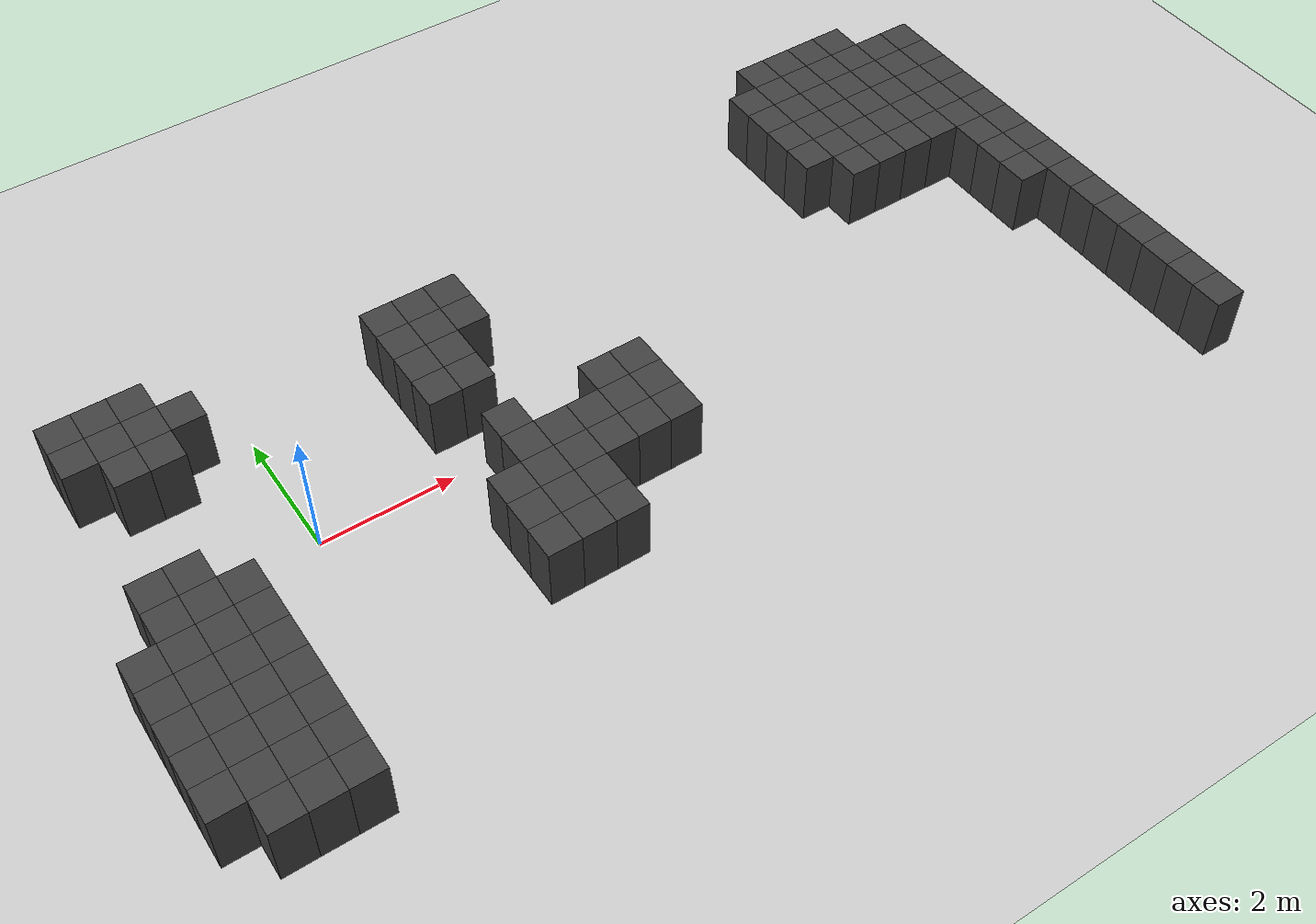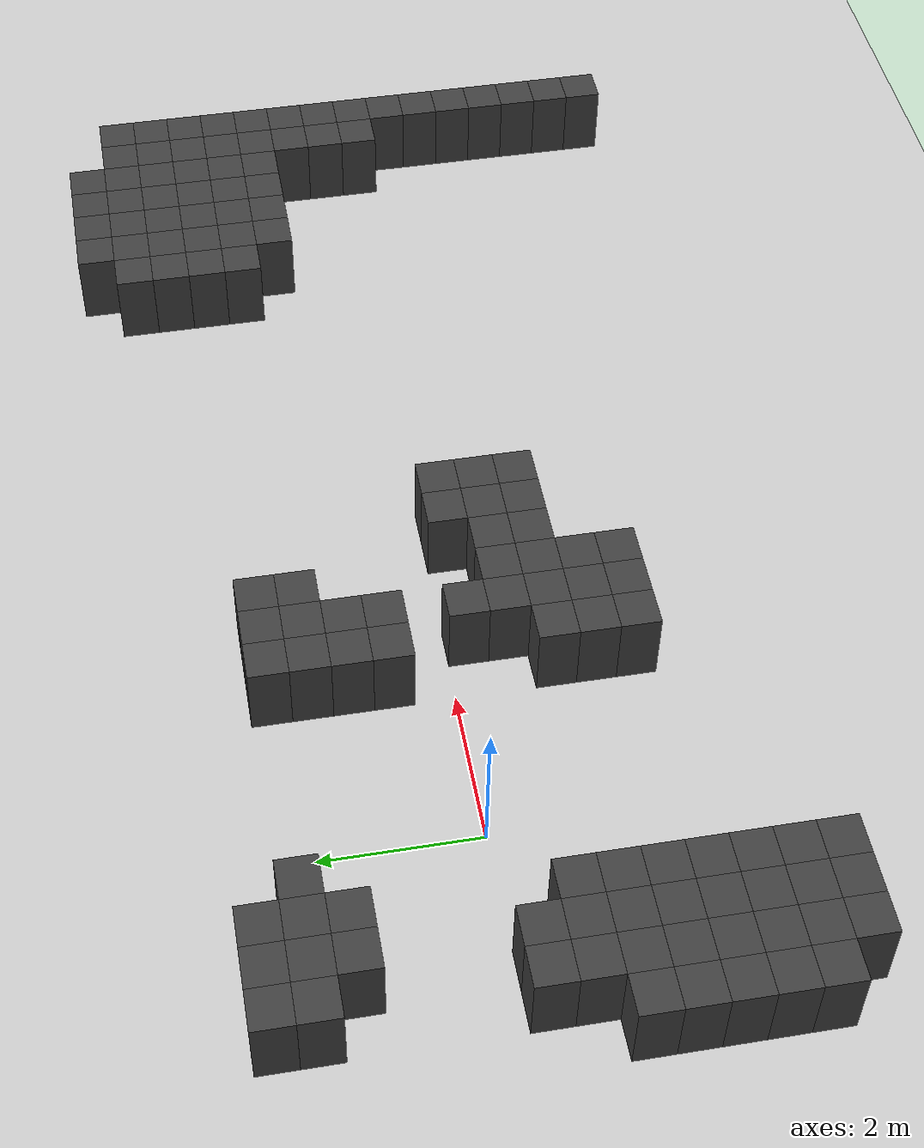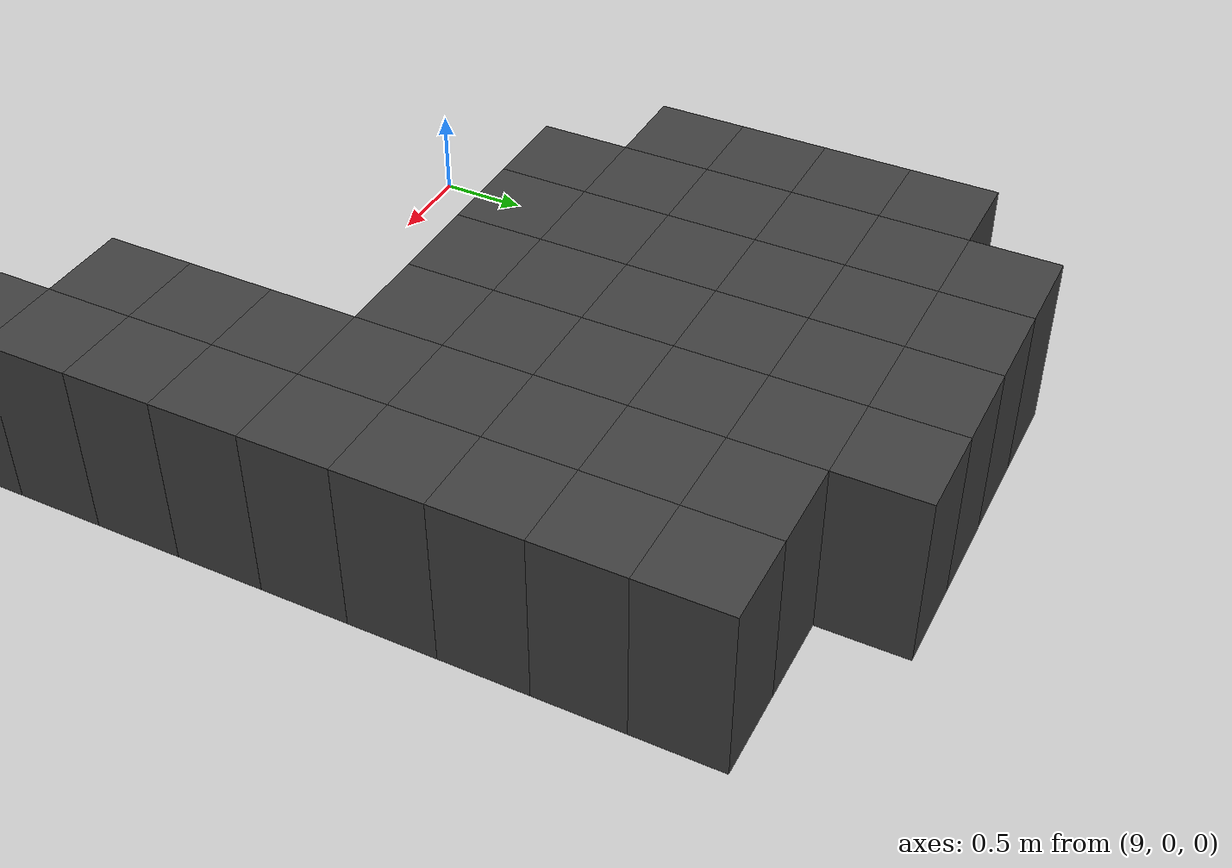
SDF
<sdf version="1.7">
 <world name="map_6610">
  <model name="ground_plane">
   <static>true</static>
   <link name="link">
    <collision name="collision">
     <geometry><plane><normal>0 0 1</normal><size>200 200</size></plane></geometry>
    </collision>
    <visual name="visual">
     <geometry><plane><normal>0 0 1</normal><size>200 200</size></plane></geometry>
     <material><ambient>0.8 0.8 0.8 1</ambient><diffuse>0.8 0.8 0.8 1</diffuse></material>
    </visual>
   </link>
  </model>
  <model name="maze_environment">
   <static>true</static>
   <link name="wall_196">
    <pose>9.750 3.750 0.500 0 0 0</pose>
    <collision name="col"><geometry><box><size>0.5 0.5 1.0</size></box></geometry></collision>
    <visual name="vis">
     <geometry><box><size>0.5 0.5 1.0</size></box></geometry>
     <material><ambient>0.15 0.15 0.15 1</ambient><diffuse>0.25 0.25 0.25 1</diffuse></material>
    </visual>
   </link>
   <link name="wall_197">
    <pose>10.250 3.750 0.500 0 0 0</pose>
    <collision name="col"><geometry><box><size>0.5 0.5 1.0</size></box></geometry></collision>
    <visual name="vis">
     <geometry><box><size>0.5 0.5 1.0</size></box></geometry>
     <material><ambient>0.15 0.15 0.15 1</ambient><diffuse>0.25 0.25 0.25 1</diffuse></material>
    </visual>
   </link>
   <link name="wall_198">
    <pose>10.750 3.750 0.500 0 0 0</pose>
    <collision name="col"><geometry><box><size>0.5 0.5 1.0</size></box></geometry></collision>
    <visual name="vis">
     <geometry><box><size>0.5 0.5 1.0</size></box></geometry>
     <material><ambient>0.15 0.15 0.15 1</ambient><diffuse>0.25 0.25 0.25 1</diffuse></material>
    </visual>
   </link>
   <link name="wall_199">
    <pose>11.250 3.750 0.500 0 0 0</pose>
    <collision name="col"><geometry><box><size>0.5 0.5 1.0</size></box></geometry></collision>
    <visual name="vis">
     <geometry><box><size>0.5 0.5 1.0</size></box></geometry>
     <material><ambient>0.15 0.15 0.15 1</ambient><diffuse>0.25 0.25 0.25 1</diffuse></material>
    </visual>
   </link>
   <link name="wall_209">
    <pose>9.250 3.250 0.500 0 0 0</pose>
    <collision name="col"><geometry><box><size>0.5 0.5 1.0</size></box></geometry></collision>
    <visual name="vis">
     <geometry><box><size>0.5 0.5 1.0</size></box></geometry>
     <material><ambient>0.15 0.15 0.15 1</ambient><diffuse>0.25 0.25 0.25 1</diffuse></material>
    </visual>
   </link>
   <link name="wall_210">
    <pose>9.750 3.250 0.500 0 0 0</pose>
    <collision name="col"><geometry><box><size>0.5 0.5 1.0</size></box></geometry></collision>
    <visual name="vis">
     <geometry><box><size>0.5 0.5 1.0</size></box></geometry>
     <material><ambient>0.15 0.15 0.15 1</ambient><diffuse>0.25 0.25 0.25 1</diffuse></material>
    </visual>
   </link>
   <link name="wall_211">
    <pose>10.250 3.250 0.500 0 0 0</pose>
    <collision name="col"><geometry><box><size>0.5 0.5 1.0</size></box></geometry></collision>
    <visual name="vis">
     <geometry><box><size>0.5 0.5 1.0</size></box></geometry>
     <material><ambient>0.15 0.15 0.15 1</ambient><diffuse>0.25 0.25 0.25 1</diffuse></material>
    </visual>
   </link>
   <link name="wall_212">
    <pose>10.750 3.250 0.500 0 0 0</pose>
    <collision name="col"><geometry><box><size>0.5 0.5 1.0</size></box></geometry></collision>
    <visual name="vis">
     <geometry><box><size>0.5 0.5 1.0</size></box></geometry>
     <material><ambient>0.15 0.15 0.15 1</ambient><diffuse>0.25 0.25 0.25 1</diffuse></material>
    </visual>
   </link>
   <link name="wall_213">
    <pose>11.250 3.250 0.500 0 0 0</pose>
    <collision name="col"><geometry><box><size>0.5 0.5 1.0</size></box></geometry></collision>
    <visual name="vis">
     <geometry><box><size>0.5 0.5 1.0</size></box></geometry>
     <material><ambient>0.15 0.15 0.15 1</ambient><diffuse>0.25 0.25 0.25 1</diffuse></material>
    </visual>
   </link>
   <link name="wall_214">
    <pose>11.750 3.250 0.500 0 0 0</pose>
    <collision name="col"><geometry><box><size>0.5 0.5 1.0</size></box></geometry></collision>
    <visual name="vis">
     <geometry><box><size>0.5 0.5 1.0</size></box></geometry>
     <material><ambient>0.15 0.15 0.15 1</ambient><diffuse>0.25 0.25 0.25 1</diffuse></material>
    </visual>
   </link>
   <link name="wall_215">
    <pose>12.250 3.250 0.500 0 0 0</pose>
    <collision name="col"><geometry><box><size>0.5 0.5 1.0</size></box></geometry></collision>
    <visual name="vis">
     <geometry><box><size>0.5 0.5 1.0</size></box></geometry>
     <material><ambient>0.15 0.15 0.15 1</ambient><diffuse>0.25 0.25 0.25 1</diffuse></material>
    </visual>
   </link>
   <link name="wall_224">
    <pose>-2.250 2.750 0.500 0 0 0</pose>
    <collision name="col"><geometry><box><size>0.5 0.5 1.0</size></box></geometry></collision>
    <visual name="vis">
     <geometry><box><size>0.5 0.5 1.0</size></box></geometry>
     <material><ambient>0.15 0.15 0.15 1</ambient><diffuse>0.25 0.25 0.25 1</diffuse></material>
    </visual>
   </link>
   <link name="wall_225">
    <pose>-1.750 2.750 0.500 0 0 0</pose>
    <collision name="col"><geometry><box><size>0.5 0.5 1.0</size></box></geometry></collision>
    <visual name="vis">
     <geometry><box><size>0.5 0.5 1.0</size></box></geometry>
     <material><ambient>0.15 0.15 0.15 1</ambient><diffuse>0.25 0.25 0.25 1</diffuse></material>
    </visual>
   </link>
   <link name="wall_226">
    <pose>-1.250 2.750 0.500 0 0 0</pose>
    <collision name="col"><geometry><box><size>0.5 0.5 1.0</size></box></geometry></collision>
    <visual name="vis">
     <geometry><box><size>0.5 0.5 1.0</size></box></geometry>
     <material><ambient>0.15 0.15 0.15 1</ambient><diffuse>0.25 0.25 0.25 1</diffuse></material>
    </visual>
   </link>
   <link name="wall_227">
    <pose>9.250 2.750 0.500 0 0 0</pose>
    <collision name="col"><geometry><box><size>0.5 0.5 1.0</size></box></geometry></collision>
    <visual name="vis">
     <geometry><box><size>0.5 0.5 1.0</size></box></geometry>
     <material><ambient>0.15 0.15 0.15 1</ambient><diffuse>0.25 0.25 0.25 1</diffuse></material>
    </visual>
   </link>
   <link name="wall_228">
    <pose>9.750 2.750 0.500 0 0 0</pose>
    <collision name="col"><geometry><box><size>0.5 0.5 1.0</size></box></geometry></collision>
    <visual name="vis">
     <geometry><box><size>0.5 0.5 1.0</size></box></geometry>
     <material><ambient>0.15 0.15 0.15 1</ambient><diffuse>0.25 0.25 0.25 1</diffuse></material>
    </visual>
   </link>
   <link name="wall_229">
    <pose>10.250 2.750 0.500 0 0 0</pose>
    <collision name="col"><geometry><box><size>0.5 0.5 1.0</size></box></geometry></collision>
    <visual name="vis">
     <geometry><box><size>0.5 0.5 1.0</size></box></geometry>
     <material><ambient>0.15 0.15 0.15 1</ambient><diffuse>0.25 0.25 0.25 1</diffuse></material>
    </visual>
   </link>
   <link name="wall_230">
    <pose>10.750 2.750 0.500 0 0 0</pose>
    <collision name="col"><geometry><box><size>0.5 0.5 1.0</size></box></geometry></collision>
    <visual name="vis">
     <geometry><box><size>0.5 0.5 1.0</size></box></geometry>
     <material><ambient>0.15 0.15 0.15 1</ambient><diffuse>0.25 0.25 0.25 1</diffuse></material>
    </visual>
   </link>
   <link name="wall_231">
    <pose>11.250 2.750 0.500 0 0 0</pose>
    <collision name="col"><geometry><box><size>0.5 0.5 1.0</size></box></geometry></collision>
    <visual name="vis">
     <geometry><box><size>0.5 0.5 1.0</size></box></geometry>
     <material><ambient>0.15 0.15 0.15 1</ambient><diffuse>0.25 0.25 0.25 1</diffuse></material>
    </visual>
   </link>
   <link name="wall_232">
    <pose>11.750 2.750 0.500 0 0 0</pose>
    <collision name="col"><geometry><box><size>0.5 0.5 1.0</size></box></geometry></collision>
    <visual name="vis">
     <geometry><box><size>0.5 0.5 1.0</size></box></geometry>
     <material><ambient>0.15 0.15 0.15 1</ambient><diffuse>0.25 0.25 0.25 1</diffuse></material>
    </visual>
   </link>
   <link name="wall_233">
    <pose>12.250 2.750 0.500 0 0 0</pose>
    <collision name="col"><geometry><box><size>0.5 0.5 1.0</size></box></geometry></collision>
    <visual name="vis">
     <geometry><box><size>0.5 0.5 1.0</size></box></geometry>
     <material><ambient>0.15 0.15 0.15 1</ambient><diffuse>0.25 0.25 0.25 1</diffuse></material>
    </visual>
   </link>
   <link name="wall_240">
    <pose>-2.250 2.250 0.500 0 0 0</pose>
    <collision name="col"><geometry><box><size>0.5 0.5 1.0</size></box></geometry></collision>
    <visual name="vis">
     <geometry><box><size>0.5 0.5 1.0</size></box></geometry>
     <material><ambient>0.15 0.15 0.15 1</ambient><diffuse>0.25 0.25 0.25 1</diffuse></material>
    </visual>
   </link>
   <link name="wall_241">
    <pose>-1.750 2.250 0.500 0 0 0</pose>
    <collision name="col"><geometry><box><size>0.5 0.5 1.0</size></box></geometry></collision>
    <visual name="vis">
     <geometry><box><size>0.5 0.5 1.0</size></box></geometry>
     <material><ambient>0.15 0.15 0.15 1</ambient><diffuse>0.25 0.25 0.25 1</diffuse></material>
    </visual>
   </link>
   <link name="wall_242">
    <pose>-1.250 2.250 0.500 0 0 0</pose>
    <collision name="col"><geometry><box><size>0.5 0.5 1.0</size></box></geometry></collision>
    <visual name="vis">
     <geometry><box><size>0.5 0.5 1.0</size></box></geometry>
     <material><ambient>0.15 0.15 0.15 1</ambient><diffuse>0.25 0.25 0.25 1</diffuse></material>
    </visual>
   </link>
   <link name="wall_243">
    <pose>-0.750 2.250 0.500 0 0 0</pose>
    <collision name="col"><geometry><box><size>0.5 0.5 1.0</size></box></geometry></collision>
    <visual name="vis">
     <geometry><box><size>0.5 0.5 1.0</size></box></geometry>
     <material><ambient>0.15 0.15 0.15 1</ambient><diffuse>0.25 0.25 0.25 1</diffuse></material>
    </visual>
   </link>
   <link name="wall_244">
    <pose>2.250 2.250 0.500 0 0 0</pose>
    <collision name="col"><geometry><box><size>0.5 0.5 1.0</size></box></geometry></collision>
    <visual name="vis">
     <geometry><box><size>0.5 0.5 1.0</size></box></geometry>
     <material><ambient>0.15 0.15 0.15 1</ambient><diffuse>0.25 0.25 0.25 1</diffuse></material>
    </visual>
   </link>
   <link name="wall_245">
    <pose>2.750 2.250 0.500 0 0 0</pose>
    <collision name="col"><geometry><box><size>0.5 0.5 1.0</size></box></geometry></collision>
    <visual name="vis">
     <geometry><box><size>0.5 0.5 1.0</size></box></geometry>
     <material><ambient>0.15 0.15 0.15 1</ambient><diffuse>0.25 0.25 0.25 1</diffuse></material>
    </visual>
   </link>
   <link name="wall_246">
    <pose>3.250 2.250 0.500 0 0 0</pose>
    <collision name="col"><geometry><box><size>0.5 0.5 1.0</size></box></geometry></collision>
    <visual name="vis">
     <geometry><box><size>0.5 0.5 1.0</size></box></geometry>
     <material><ambient>0.15 0.15 0.15 1</ambient><diffuse>0.25 0.25 0.25 1</diffuse></material>
    </visual>
   </link>
   <link name="wall_247">
    <pose>9.250 2.250 0.500 0 0 0</pose>
    <collision name="col"><geometry><box><size>0.5 0.5 1.0</size></box></geometry></collision>
    <visual name="vis">
     <geometry><box><size>0.5 0.5 1.0</size></box></geometry>
     <material><ambient>0.15 0.15 0.15 1</ambient><diffuse>0.25 0.25 0.25 1</diffuse></material>
    </visual>
   </link>
   <link name="wall_248">
    <pose>9.750 2.250 0.500 0 0 0</pose>
    <collision name="col"><geometry><box><size>0.5 0.5 1.0</size></box></geometry></collision>
    <visual name="vis">
     <geometry><box><size>0.5 0.5 1.0</size></box></geometry>
     <material><ambient>0.15 0.15 0.15 1</ambient><diffuse>0.25 0.25 0.25 1</diffuse></material>
    </visual>
   </link>
   <link name="wall_249">
    <pose>10.250 2.250 0.500 0 0 0</pose>
    <collision name="col"><geometry><box><size>0.5 0.5 1.0</size></box></geometry></collision>
    <visual name="vis">
     <geometry><box><size>0.5 0.5 1.0</size></box></geometry>
     <material><ambient>0.15 0.15 0.15 1</ambient><diffuse>0.25 0.25 0.25 1</diffuse></material>
    </visual>
   </link>
   <link name="wall_250">
    <pose>10.750 2.250 0.500 0 0 0</pose>
    <collision name="col"><geometry><box><size>0.5 0.5 1.0</size></box></geometry></collision>
    <visual name="vis">
     <geometry><box><size>0.5 0.5 1.0</size></box></geometry>
     <material><ambient>0.15 0.15 0.15 1</ambient><diffuse>0.25 0.25 0.25 1</diffuse></material>
    </visual>
   </link>
   <link name="wall_251">
    <pose>11.250 2.250 0.500 0 0 0</pose>
    <collision name="col"><geometry><box><size>0.5 0.5 1.0</size></box></geometry></collision>
    <visual name="vis">
     <geometry><box><size>0.5 0.5 1.0</size></box></geometry>
     <material><ambient>0.15 0.15 0.15 1</ambient><diffuse>0.25 0.25 0.25 1</diffuse></material>
    </visual>
   </link>
   <link name="wall_252">
    <pose>11.750 2.250 0.500 0 0 0</pose>
    <collision name="col"><geometry><box><size>0.5 0.5 1.0</size></box></geometry></collision>
    <visual name="vis">
     <geometry><box><size>0.5 0.5 1.0</size></box></geometry>
     <material><ambient>0.15 0.15 0.15 1</ambient><diffuse>0.25 0.25 0.25 1</diffuse></material>
    </visual>
   </link>
   <link name="wall_253">
    <pose>12.250 2.250 0.500 0 0 0</pose>
    <collision name="col"><geometry><box><size>0.5 0.5 1.0</size></box></geometry></collision>
    <visual name="vis">
     <geometry><box><size>0.5 0.5 1.0</size></box></geometry>
     <material><ambient>0.15 0.15 0.15 1</ambient><diffuse>0.25 0.25 0.25 1</diffuse></material>
    </visual>
   </link>
   <link name="wall_259">
    <pose>-1.750 1.750 0.500 0 0 0</pose>
    <collision name="col"><geometry><box><size>0.5 0.5 1.0</size></box></geometry></collision>
    <visual name="vis">
     <geometry><box><size>0.5 0.5 1.0</size></box></geometry>
     <material><ambient>0.15 0.15 0.15 1</ambient><diffuse>0.25 0.25 0.25 1</diffuse></material>
    </visual>
   </link>
   <link name="wall_260">
    <pose>-1.250 1.750 0.500 0 0 0</pose>
    <collision name="col"><geometry><box><size>0.5 0.5 1.0</size></box></geometry></collision>
    <visual name="vis">
     <geometry><box><size>0.5 0.5 1.0</size></box></geometry>
     <material><ambient>0.15 0.15 0.15 1</ambient><diffuse>0.25 0.25 0.25 1</diffuse></material>
    </visual>
   </link>
   <link name="wall_261">
    <pose>2.250 1.750 0.500 0 0 0</pose>
    <collision name="col"><geometry><box><size>0.5 0.5 1.0</size></box></geometry></collision>
    <visual name="vis">
     <geometry><box><size>0.5 0.5 1.0</size></box></geometry>
     <material><ambient>0.15 0.15 0.15 1</ambient><diffuse>0.25 0.25 0.25 1</diffuse></material>
    </visual>
   </link>
   <link name="wall_262">
    <pose>2.750 1.750 0.500 0 0 0</pose>
    <collision name="col"><geometry><box><size>0.5 0.5 1.0</size></box></geometry></collision>
    <visual name="vis">
     <geometry><box><size>0.5 0.5 1.0</size></box></geometry>
     <material><ambient>0.15 0.15 0.15 1</ambient><diffuse>0.25 0.25 0.25 1</diffuse></material>
    </visual>
   </link>
   <link name="wall_263">
    <pose>3.250 1.750 0.500 0 0 0</pose>
    <collision name="col"><geometry><box><size>0.5 0.5 1.0</size></box></geometry></collision>
    <visual name="vis">
     <geometry><box><size>0.5 0.5 1.0</size></box></geometry>
     <material><ambient>0.15 0.15 0.15 1</ambient><diffuse>0.25 0.25 0.25 1</diffuse></material>
    </visual>
   </link>
   <link name="wall_264">
    <pose>9.250 1.750 0.500 0 0 0</pose>
    <collision name="col"><geometry><box><size>0.5 0.5 1.0</size></box></geometry></collision>
    <visual name="vis">
     <geometry><box><size>0.5 0.5 1.0</size></box></geometry>
     <material><ambient>0.15 0.15 0.15 1</ambient><diffuse>0.25 0.25 0.25 1</diffuse></material>
    </visual>
   </link>
   <link name="wall_265">
    <pose>9.750 1.750 0.500 0 0 0</pose>
    <collision name="col"><geometry><box><size>0.5 0.5 1.0</size></box></geometry></collision>
    <visual name="vis">
     <geometry><box><size>0.5 0.5 1.0</size></box></geometry>
     <material><ambient>0.15 0.15 0.15 1</ambient><diffuse>0.25 0.25 0.25 1</diffuse></material>
    </visual>
   </link>
   <link name="wall_266">
    <pose>10.250 1.750 0.500 0 0 0</pose>
    <collision name="col"><geometry><box><size>0.5 0.5 1.0</size></box></geometry></collision>
    <visual name="vis">
     <geometry><box><size>0.5 0.5 1.0</size></box></geometry>
     <material><ambient>0.15 0.15 0.15 1</ambient><diffuse>0.25 0.25 0.25 1</diffuse></material>
    </visual>
   </link>
   <link name="wall_267">
    <pose>10.750 1.750 0.500 0 0 0</pose>
    <collision name="col"><geometry><box><size>0.5 0.5 1.0</size></box></geometry></collision>
    <visual name="vis">
     <geometry><box><size>0.5 0.5 1.0</size></box></geometry>
     <material><ambient>0.15 0.15 0.15 1</ambient><diffuse>0.25 0.25 0.25 1</diffuse></material>
    </visual>
   </link>
   <link name="wall_268">
    <pose>11.250 1.750 0.500 0 0 0</pose>
    <collision name="col"><geometry><box><size>0.5 0.5 1.0</size></box></geometry></collision>
    <visual name="vis">
     <geometry><box><size>0.5 0.5 1.0</size></box></geometry>
     <material><ambient>0.15 0.15 0.15 1</ambient><diffuse>0.25 0.25 0.25 1</diffuse></material>
    </visual>
   </link>
   <link name="wall_269">
    <pose>11.750 1.750 0.500 0 0 0</pose>
    <collision name="col"><geometry><box><size>0.5 0.5 1.0</size></box></geometry></collision>
    <visual name="vis">
     <geometry><box><size>0.5 0.5 1.0</size></box></geometry>
     <material><ambient>0.15 0.15 0.15 1</ambient><diffuse>0.25 0.25 0.25 1</diffuse></material>
    </visual>
   </link>
   <link name="wall_270">
    <pose>12.250 1.750 0.500 0 0 0</pose>
    <collision name="col"><geometry><box><size>0.5 0.5 1.0</size></box></geometry></collision>
    <visual name="vis">
     <geometry><box><size>0.5 0.5 1.0</size></box></geometry>
     <material><ambient>0.15 0.15 0.15 1</ambient><diffuse>0.25 0.25 0.25 1</diffuse></material>
    </visual>
   </link>
   <link name="wall_272">
    <pose>2.250 1.250 0.500 0 0 0</pose>
    <collision name="col"><geometry><box><size>0.5 0.5 1.0</size></box></geometry></collision>
    <visual name="vis">
     <geometry><box><size>0.5 0.5 1.0</size></box></geometry>
     <material><ambient>0.15 0.15 0.15 1</ambient><diffuse>0.25 0.25 0.25 1</diffuse></material>
    </visual>
   </link>
   <link name="wall_273">
    <pose>2.750 1.250 0.500 0 0 0</pose>
    <collision name="col"><geometry><box><size>0.5 0.5 1.0</size></box></geometry></collision>
    <visual name="vis">
     <geometry><box><size>0.5 0.5 1.0</size></box></geometry>
     <material><ambient>0.15 0.15 0.15 1</ambient><diffuse>0.25 0.25 0.25 1</diffuse></material>
    </visual>
   </link>
   <link name="wall_274">
    <pose>9.750 1.250 0.500 0 0 0</pose>
    <collision name="col"><geometry><box><size>0.5 0.5 1.0</size></box></geometry></collision>
    <visual name="vis">
     <geometry><box><size>0.5 0.5 1.0</size></box></geometry>
     <material><ambient>0.15 0.15 0.15 1</ambient><diffuse>0.25 0.25 0.25 1</diffuse></material>
    </visual>
   </link>
   <link name="wall_275">
    <pose>10.250 1.250 0.500 0 0 0</pose>
    <collision name="col"><geometry><box><size>0.5 0.5 1.0</size></box></geometry></collision>
    <visual name="vis">
     <geometry><box><size>0.5 0.5 1.0</size></box></geometry>
     <material><ambient>0.15 0.15 0.15 1</ambient><diffuse>0.25 0.25 0.25 1</diffuse></material>
    </visual>
   </link>
   <link name="wall_276">
    <pose>10.750 1.250 0.500 0 0 0</pose>
    <collision name="col"><geometry><box><size>0.5 0.5 1.0</size></box></geometry></collision>
    <visual name="vis">
     <geometry><box><size>0.5 0.5 1.0</size></box></geometry>
     <material><ambient>0.15 0.15 0.15 1</ambient><diffuse>0.25 0.25 0.25 1</diffuse></material>
    </visual>
   </link>
   <link name="wall_277">
    <pose>11.250 1.250 0.500 0 0 0</pose>
    <collision name="col"><geometry><box><size>0.5 0.5 1.0</size></box></geometry></collision>
    <visual name="vis">
     <geometry><box><size>0.5 0.5 1.0</size></box></geometry>
     <material><ambient>0.15 0.15 0.15 1</ambient><diffuse>0.25 0.25 0.25 1</diffuse></material>
    </visual>
   </link>
   <link name="wall_278">
    <pose>11.750 1.250 0.500 0 0 0</pose>
    <collision name="col"><geometry><box><size>0.5 0.5 1.0</size></box></geometry></collision>
    <visual name="vis">
     <geometry><box><size>0.5 0.5 1.0</size></box></geometry>
     <material><ambient>0.15 0.15 0.15 1</ambient><diffuse>0.25 0.25 0.25 1</diffuse></material>
    </visual>
   </link>
   <link name="wall_279">
    <pose>12.250 1.250 0.500 0 0 0</pose>
    <collision name="col"><geometry><box><size>0.5 0.5 1.0</size></box></geometry></collision>
    <visual name="vis">
     <geometry><box><size>0.5 0.5 1.0</size></box></geometry>
     <material><ambient>0.15 0.15 0.15 1</ambient><diffuse>0.25 0.25 0.25 1</diffuse></material>
    </visual>
   </link>
   <link name="wall_281">
    <pose>2.250 0.750 0.500 0 0 0</pose>
    <collision name="col"><geometry><box><size>0.5 0.5 1.0</size></box></geometry></collision>
    <visual name="vis">
     <geometry><box><size>0.5 0.5 1.0</size></box></geometry>
     <material><ambient>0.15 0.15 0.15 1</ambient><diffuse>0.25 0.25 0.25 1</diffuse></material>
    </visual>
   </link>
   <link name="wall_282">
    <pose>2.750 0.750 0.500 0 0 0</pose>
    <collision name="col"><geometry><box><size>0.5 0.5 1.0</size></box></geometry></collision>
    <visual name="vis">
     <geometry><box><size>0.5 0.5 1.0</size></box></geometry>
     <material><ambient>0.15 0.15 0.15 1</ambient><diffuse>0.25 0.25 0.25 1</diffuse></material>
    </visual>
   </link>
   <link name="wall_283">
    <pose>11.750 0.750 0.500 0 0 0</pose>
    <collision name="col"><geometry><box><size>0.5 0.5 1.0</size></box></geometry></collision>
    <visual name="vis">
     <geometry><box><size>0.5 0.5 1.0</size></box></geometry>
     <material><ambient>0.15 0.15 0.15 1</ambient><diffuse>0.25 0.25 0.25 1</diffuse></material>
    </visual>
   </link>
   <link name="wall_284">
    <pose>12.250 0.750 0.500 0 0 0</pose>
    <collision name="col"><geometry><box><size>0.5 0.5 1.0</size></box></geometry></collision>
    <visual name="vis">
     <geometry><box><size>0.5 0.5 1.0</size></box></geometry>
     <material><ambient>0.15 0.15 0.15 1</ambient><diffuse>0.25 0.25 0.25 1</diffuse></material>
    </visual>
   </link>
   <link name="wall_286">
    <pose>11.750 0.250 0.500 0 0 0</pose>
    <collision name="col"><geometry><box><size>0.5 0.5 1.0</size></box></geometry></collision>
    <visual name="vis">
     <geometry><box><size>0.5 0.5 1.0</size></box></geometry>
     <material><ambient>0.15 0.15 0.15 1</ambient><diffuse>0.25 0.25 0.25 1</diffuse></material>
    </visual>
   </link>
   <link name="wall_287">
    <pose>12.250 0.250 0.500 0 0 0</pose>
    <collision name="col"><geometry><box><size>0.5 0.5 1.0</size></box></geometry></collision>
    <visual name="vis">
     <geometry><box><size>0.5 0.5 1.0</size></box></geometry>
     <material><ambient>0.15 0.15 0.15 1</ambient><diffuse>0.25 0.25 0.25 1</diffuse></material>
    </visual>
   </link>
   <link name="wall_289">
    <pose>-2.250 -0.250 0.500 0 0 0</pose>
    <collision name="col"><geometry><box><size>0.5 0.5 1.0</size></box></geometry></collision>
    <visual name="vis">
     <geometry><box><size>0.5 0.5 1.0</size></box></geometry>
     <material><ambient>0.15 0.15 0.15 1</ambient><diffuse>0.25 0.25 0.25 1</diffuse></material>
    </visual>
   </link>
   <link name="wall_290">
    <pose>-1.750 -0.250 0.500 0 0 0</pose>
    <collision name="col"><geometry><box><size>0.5 0.5 1.0</size></box></geometry></collision>
    <visual name="vis">
     <geometry><box><size>0.5 0.5 1.0</size></box></geometry>
     <material><ambient>0.15 0.15 0.15 1</ambient><diffuse>0.25 0.25 0.25 1</diffuse></material>
    </visual>
   </link>
   <link name="wall_291">
    <pose>2.750 -0.250 0.500 0 0 0</pose>
    <collision name="col"><geometry><box><size>0.5 0.5 1.0</size></box></geometry></collision>
    <visual name="vis">
     <geometry><box><size>0.5 0.5 1.0</size></box></geometry>
     <material><ambient>0.15 0.15 0.15 1</ambient><diffuse>0.25 0.25 0.25 1</diffuse></material>
    </visual>
   </link>
   <link name="wall_292">
    <pose>4.250 -0.250 0.500 0 0 0</pose>
    <collision name="col"><geometry><box><size>0.5 0.5 1.0</size></box></geometry></collision>
    <visual name="vis">
     <geometry><box><size>0.5 0.5 1.0</size></box></geometry>
     <material><ambient>0.15 0.15 0.15 1</ambient><diffuse>0.25 0.25 0.25 1</diffuse></material>
    </visual>
   </link>
   <link name="wall_293">
    <pose>4.750 -0.250 0.500 0 0 0</pose>
    <collision name="col"><geometry><box><size>0.5 0.5 1.0</size></box></geometry></collision>
    <visual name="vis">
     <geometry><box><size>0.5 0.5 1.0</size></box></geometry>
     <material><ambient>0.15 0.15 0.15 1</ambient><diffuse>0.25 0.25 0.25 1</diffuse></material>
    </visual>
   </link>
   <link name="wall_294">
    <pose>11.750 -0.250 0.500 0 0 0</pose>
    <collision name="col"><geometry><box><size>0.5 0.5 1.0</size></box></geometry></collision>
    <visual name="vis">
     <geometry><box><size>0.5 0.5 1.0</size></box></geometry>
     <material><ambient>0.15 0.15 0.15 1</ambient><diffuse>0.25 0.25 0.25 1</diffuse></material>
    </visual>
   </link>
   <link name="wall_295">
    <pose>12.250 -0.250 0.500 0 0 0</pose>
    <collision name="col"><geometry><box><size>0.5 0.5 1.0</size></box></geometry></collision>
    <visual name="vis">
     <geometry><box><size>0.5 0.5 1.0</size></box></geometry>
     <material><ambient>0.15 0.15 0.15 1</ambient><diffuse>0.25 0.25 0.25 1</diffuse></material>
    </visual>
   </link>
   <link name="wall_298">
    <pose>-2.250 -0.750 0.500 0 0 0</pose>
    <collision name="col"><geometry><box><size>0.5 0.5 1.0</size></box></geometry></collision>
    <visual name="vis">
     <geometry><box><size>0.5 0.5 1.0</size></box></geometry>
     <material><ambient>0.15 0.15 0.15 1</ambient><diffuse>0.25 0.25 0.25 1</diffuse></material>
    </visual>
   </link>
   <link name="wall_299">
    <pose>-1.750 -0.750 0.500 0 0 0</pose>
    <collision name="col"><geometry><box><size>0.5 0.5 1.0</size></box></geometry></collision>
    <visual name="vis">
     <geometry><box><size>0.5 0.5 1.0</size></box></geometry>
     <material><ambient>0.15 0.15 0.15 1</ambient><diffuse>0.25 0.25 0.25 1</diffuse></material>
    </visual>
   </link>
   <link name="wall_300">
    <pose>-1.250 -0.750 0.500 0 0 0</pose>
    <collision name="col"><geometry><box><size>0.5 0.5 1.0</size></box></geometry></collision>
    <visual name="vis">
     <geometry><box><size>0.5 0.5 1.0</size></box></geometry>
     <material><ambient>0.15 0.15 0.15 1</ambient><diffuse>0.25 0.25 0.25 1</diffuse></material>
    </visual>
   </link>
   <link name="wall_301">
    <pose>2.750 -0.750 0.500 0 0 0</pose>
    <collision name="col"><geometry><box><size>0.5 0.5 1.0</size></box></geometry></collision>
    <visual name="vis">
     <geometry><box><size>0.5 0.5 1.0</size></box></geometry>
     <material><ambient>0.15 0.15 0.15 1</ambient><diffuse>0.25 0.25 0.25 1</diffuse></material>
    </visual>
   </link>
   <link name="wall_302">
    <pose>3.250 -0.750 0.500 0 0 0</pose>
    <collision name="col"><geometry><box><size>0.5 0.5 1.0</size></box></geometry></collision>
    <visual name="vis">
     <geometry><box><size>0.5 0.5 1.0</size></box></geometry>
     <material><ambient>0.15 0.15 0.15 1</ambient><diffuse>0.25 0.25 0.25 1</diffuse></material>
    </visual>
   </link>
   <link name="wall_303">
    <pose>3.750 -0.750 0.500 0 0 0</pose>
    <collision name="col"><geometry><box><size>0.5 0.5 1.0</size></box></geometry></collision>
    <visual name="vis">
     <geometry><box><size>0.5 0.5 1.0</size></box></geometry>
     <material><ambient>0.15 0.15 0.15 1</ambient><diffuse>0.25 0.25 0.25 1</diffuse></material>
    </visual>
   </link>
   <link name="wall_304">
    <pose>4.250 -0.750 0.500 0 0 0</pose>
    <collision name="col"><geometry><box><size>0.5 0.5 1.0</size></box></geometry></collision>
    <visual name="vis">
     <geometry><box><size>0.5 0.5 1.0</size></box></geometry>
     <material><ambient>0.15 0.15 0.15 1</ambient><diffuse>0.25 0.25 0.25 1</diffuse></material>
    </visual>
   </link>
   <link name="wall_305">
    <pose>4.750 -0.750 0.500 0 0 0</pose>
    <collision name="col"><geometry><box><size>0.5 0.5 1.0</size></box></geometry></collision>
    <visual name="vis">
     <geometry><box><size>0.5 0.5 1.0</size></box></geometry>
     <material><ambient>0.15 0.15 0.15 1</ambient><diffuse>0.25 0.25 0.25 1</diffuse></material>
    </visual>
   </link>
   <link name="wall_306">
    <pose>12.250 -0.750 0.500 0 0 0</pose>
    <collision name="col"><geometry><box><size>0.5 0.5 1.0</size></box></geometry></collision>
    <visual name="vis">
     <geometry><box><size>0.5 0.5 1.0</size></box></geometry>
     <material><ambient>0.15 0.15 0.15 1</ambient><diffuse>0.25 0.25 0.25 1</diffuse></material>
    </visual>
   </link>
   <link name="wall_309">
    <pose>-2.750 -1.250 0.500 0 0 0</pose>
    <collision name="col"><geometry><box><size>0.5 0.5 1.0</size></box></geometry></collision>
    <visual name="vis">
     <geometry><box><size>0.5 0.5 1.0</size></box></geometry>
     <material><ambient>0.15 0.15 0.15 1</ambient><diffuse>0.25 0.25 0.25 1</diffuse></material>
    </visual>
   </link>
   <link name="wall_310">
    <pose>-2.250 -1.250 0.500 0 0 0</pose>
    <collision name="col"><geometry><box><size>0.5 0.5 1.0</size></box></geometry></collision>
    <visual name="vis">
     <geometry><box><size>0.5 0.5 1.0</size></box></geometry>
     <material><ambient>0.15 0.15 0.15 1</ambient><diffuse>0.25 0.25 0.25 1</diffuse></material>
    </visual>
   </link>
   <link name="wall_311">
    <pose>-1.750 -1.250 0.500 0 0 0</pose>
    <collision name="col"><geometry><box><size>0.5 0.5 1.0</size></box></geometry></collision>
    <visual name="vis">
     <geometry><box><size>0.5 0.5 1.0</size></box></geometry>
     <material><ambient>0.15 0.15 0.15 1</ambient><diffuse>0.25 0.25 0.25 1</diffuse></material>
    </visual>
   </link>
   <link name="wall_312">
    <pose>-1.250 -1.250 0.500 0 0 0</pose>
    <collision name="col"><geometry><box><size>0.5 0.5 1.0</size></box></geometry></collision>
    <visual name="vis">
     <geometry><box><size>0.5 0.5 1.0</size></box></geometry>
     <material><ambient>0.15 0.15 0.15 1</ambient><diffuse>0.25 0.25 0.25 1</diffuse></material>
    </visual>
   </link>
   <link name="wall_313">
    <pose>2.250 -1.250 0.500 0 0 0</pose>
    <collision name="col"><geometry><box><size>0.5 0.5 1.0</size></box></geometry></collision>
    <visual name="vis">
     <geometry><box><size>0.5 0.5 1.0</size></box></geometry>
     <material><ambient>0.15 0.15 0.15 1</ambient><diffuse>0.25 0.25 0.25 1</diffuse></material>
    </visual>
   </link>
   <link name="wall_314">
    <pose>2.750 -1.250 0.500 0 0 0</pose>
    <collision name="col"><geometry><box><size>0.5 0.5 1.0</size></box></geometry></collision>
    <visual name="vis">
     <geometry><box><size>0.5 0.5 1.0</size></box></geometry>
     <material><ambient>0.15 0.15 0.15 1</ambient><diffuse>0.25 0.25 0.25 1</diffuse></material>
    </visual>
   </link>
   <link name="wall_315">
    <pose>3.250 -1.250 0.500 0 0 0</pose>
    <collision name="col"><geometry><box><size>0.5 0.5 1.0</size></box></geometry></collision>
    <visual name="vis">
     <geometry><box><size>0.5 0.5 1.0</size></box></geometry>
     <material><ambient>0.15 0.15 0.15 1</ambient><diffuse>0.25 0.25 0.25 1</diffuse></material>
    </visual>
   </link>
   <link name="wall_316">
    <pose>3.750 -1.250 0.500 0 0 0</pose>
    <collision name="col"><geometry><box><size>0.5 0.5 1.0</size></box></geometry></collision>
    <visual name="vis">
     <geometry><box><size>0.5 0.5 1.0</size></box></geometry>
     <material><ambient>0.15 0.15 0.15 1</ambient><diffuse>0.25 0.25 0.25 1</diffuse></material>
    </visual>
   </link>
   <link name="wall_317">
    <pose>4.250 -1.250 0.500 0 0 0</pose>
    <collision name="col"><geometry><box><size>0.5 0.5 1.0</size></box></geometry></collision>
    <visual name="vis">
     <geometry><box><size>0.5 0.5 1.0</size></box></geometry>
     <material><ambient>0.15 0.15 0.15 1</ambient><diffuse>0.25 0.25 0.25 1</diffuse></material>
    </visual>
   </link>
   <link name="wall_318">
    <pose>4.750 -1.250 0.500 0 0 0</pose>
    <collision name="col"><geometry><box><size>0.5 0.5 1.0</size></box></geometry></collision>
    <visual name="vis">
     <geometry><box><size>0.5 0.5 1.0</size></box></geometry>
     <material><ambient>0.15 0.15 0.15 1</ambient><diffuse>0.25 0.25 0.25 1</diffuse></material>
    </visual>
   </link>
   <link name="wall_319">
    <pose>12.250 -1.250 0.500 0 0 0</pose>
    <collision name="col"><geometry><box><size>0.5 0.5 1.0</size></box></geometry></collision>
    <visual name="vis">
     <geometry><box><size>0.5 0.5 1.0</size></box></geometry>
     <material><ambient>0.15 0.15 0.15 1</ambient><diffuse>0.25 0.25 0.25 1</diffuse></material>
    </visual>
   </link>
   <link name="wall_322">
    <pose>-2.750 -1.750 0.500 0 0 0</pose>
    <collision name="col"><geometry><box><size>0.5 0.5 1.0</size></box></geometry></collision>
    <visual name="vis">
     <geometry><box><size>0.5 0.5 1.0</size></box></geometry>
     <material><ambient>0.15 0.15 0.15 1</ambient><diffuse>0.25 0.25 0.25 1</diffuse></material>
    </visual>
   </link>
   <link name="wall_323">
    <pose>-2.250 -1.750 0.500 0 0 0</pose>
    <collision name="col"><geometry><box><size>0.5 0.5 1.0</size></box></geometry></collision>
    <visual name="vis">
     <geometry><box><size>0.5 0.5 1.0</size></box></geometry>
     <material><ambient>0.15 0.15 0.15 1</ambient><diffuse>0.25 0.25 0.25 1</diffuse></material>
    </visual>
   </link>
   <link name="wall_324">
    <pose>-1.750 -1.750 0.500 0 0 0</pose>
    <collision name="col"><geometry><box><size>0.5 0.5 1.0</size></box></geometry></collision>
    <visual name="vis">
     <geometry><box><size>0.5 0.5 1.0</size></box></geometry>
     <material><ambient>0.15 0.15 0.15 1</ambient><diffuse>0.25 0.25 0.25 1</diffuse></material>
    </visual>
   </link>
   <link name="wall_325">
    <pose>-1.250 -1.750 0.500 0 0 0</pose>
    <collision name="col"><geometry><box><size>0.5 0.5 1.0</size></box></geometry></collision>
    <visual name="vis">
     <geometry><box><size>0.5 0.5 1.0</size></box></geometry>
     <material><ambient>0.15 0.15 0.15 1</ambient><diffuse>0.25 0.25 0.25 1</diffuse></material>
    </visual>
   </link>
   <link name="wall_326">
    <pose>2.250 -1.750 0.500 0 0 0</pose>
    <collision name="col"><geometry><box><size>0.5 0.5 1.0</size></box></geometry></collision>
    <visual name="vis">
     <geometry><box><size>0.5 0.5 1.0</size></box></geometry>
     <material><ambient>0.15 0.15 0.15 1</ambient><diffuse>0.25 0.25 0.25 1</diffuse></material>
    </visual>
   </link>
   <link name="wall_327">
    <pose>2.750 -1.750 0.500 0 0 0</pose>
    <collision name="col"><geometry><box><size>0.5 0.5 1.0</size></box></geometry></collision>
    <visual name="vis">
     <geometry><box><size>0.5 0.5 1.0</size></box></geometry>
     <material><ambient>0.15 0.15 0.15 1</ambient><diffuse>0.25 0.25 0.25 1</diffuse></material>
    </visual>
   </link>
   <link name="wall_328">
    <pose>3.250 -1.750 0.500 0 0 0</pose>
    <collision name="col"><geometry><box><size>0.5 0.5 1.0</size></box></geometry></collision>
    <visual name="vis">
     <geometry><box><size>0.5 0.5 1.0</size></box></geometry>
     <material><ambient>0.15 0.15 0.15 1</ambient><diffuse>0.25 0.25 0.25 1</diffuse></material>
    </visual>
   </link>
   <link name="wall_329">
    <pose>12.250 -1.750 0.500 0 0 0</pose>
    <collision name="col"><geometry><box><size>0.5 0.5 1.0</size></box></geometry></collision>
    <visual name="vis">
     <geometry><box><size>0.5 0.5 1.0</size></box></geometry>
     <material><ambient>0.15 0.15 0.15 1</ambient><diffuse>0.25 0.25 0.25 1</diffuse></material>
    </visual>
   </link>
   <link name="wall_332">
    <pose>-2.750 -2.250 0.500 0 0 0</pose>
    <collision name="col"><geometry><box><size>0.5 0.5 1.0</size></box></geometry></collision>
    <visual name="vis">
     <geometry><box><size>0.5 0.5 1.0</size></box></geometry>
     <material><ambient>0.15 0.15 0.15 1</ambient><diffuse>0.25 0.25 0.25 1</diffuse></material>
    </visual>
   </link>
   <link name="wall_333">
    <pose>-2.250 -2.250 0.500 0 0 0</pose>
    <collision name="col"><geometry><box><size>0.5 0.5 1.0</size></box></geometry></collision>
    <visual name="vis">
     <geometry><box><size>0.5 0.5 1.0</size></box></geometry>
     <material><ambient>0.15 0.15 0.15 1</ambient><diffuse>0.25 0.25 0.25 1</diffuse></material>
    </visual>
   </link>
   <link name="wall_334">
    <pose>-1.750 -2.250 0.500 0 0 0</pose>
    <collision name="col"><geometry><box><size>0.5 0.5 1.0</size></box></geometry></collision>
    <visual name="vis">
     <geometry><box><size>0.5 0.5 1.0</size></box></geometry>
     <material><ambient>0.15 0.15 0.15 1</ambient><diffuse>0.25 0.25 0.25 1</diffuse></material>
    </visual>
   </link>
   <link name="wall_335">
    <pose>-1.250 -2.250 0.500 0 0 0</pose>
    <collision name="col"><geometry><box><size>0.5 0.5 1.0</size></box></geometry></collision>
    <visual name="vis">
     <geometry><box><size>0.5 0.5 1.0</size></box></geometry>
     <material><ambient>0.15 0.15 0.15 1</ambient><diffuse>0.25 0.25 0.25 1</diffuse></material>
    </visual>
   </link>
   <link name="wall_336">
    <pose>2.250 -2.250 0.500 0 0 0</pose>
    <collision name="col"><geometry><box><size>0.5 0.5 1.0</size></box></geometry></collision>
    <visual name="vis">
     <geometry><box><size>0.5 0.5 1.0</size></box></geometry>
     <material><ambient>0.15 0.15 0.15 1</ambient><diffuse>0.25 0.25 0.25 1</diffuse></material>
    </visual>
   </link>
   <link name="wall_337">
    <pose>2.750 -2.250 0.500 0 0 0</pose>
    <collision name="col"><geometry><box><size>0.5 0.5 1.0</size></box></geometry></collision>
    <visual name="vis">
     <geometry><box><size>0.5 0.5 1.0</size></box></geometry>
     <material><ambient>0.15 0.15 0.15 1</ambient><diffuse>0.25 0.25 0.25 1</diffuse></material>
    </visual>
   </link>
   <link name="wall_338">
    <pose>3.250 -2.250 0.500 0 0 0</pose>
    <collision name="col"><geometry><box><size>0.5 0.5 1.0</size></box></geometry></collision>
    <visual name="vis">
     <geometry><box><size>0.5 0.5 1.0</size></box></geometry>
     <material><ambient>0.15 0.15 0.15 1</ambient><diffuse>0.25 0.25 0.25 1</diffuse></material>
    </visual>
   </link>
   <link name="wall_339">
    <pose>12.250 -2.250 0.500 0 0 0</pose>
    <collision name="col"><geometry><box><size>0.5 0.5 1.0</size></box></geometry></collision>
    <visual name="vis">
     <geometry><box><size>0.5 0.5 1.0</size></box></geometry>
     <material><ambient>0.15 0.15 0.15 1</ambient><diffuse>0.25 0.25 0.25 1</diffuse></material>
    </visual>
   </link>
   <link name="wall_341">
    <pose>-2.750 -2.750 0.500 0 0 0</pose>
    <collision name="col"><geometry><box><size>0.5 0.5 1.0</size></box></geometry></collision>
    <visual name="vis">
     <geometry><box><size>0.5 0.5 1.0</size></box></geometry>
     <material><ambient>0.15 0.15 0.15 1</ambient><diffuse>0.25 0.25 0.25 1</diffuse></material>
    </visual>
   </link>
   <link name="wall_342">
    <pose>-2.250 -2.750 0.500 0 0 0</pose>
    <collision name="col"><geometry><box><size>0.5 0.5 1.0</size></box></geometry></collision>
    <visual name="vis">
     <geometry><box><size>0.5 0.5 1.0</size></box></geometry>
     <material><ambient>0.15 0.15 0.15 1</ambient><diffuse>0.25 0.25 0.25 1</diffuse></material>
    </visual>
   </link>
   <link name="wall_343">
    <pose>-1.750 -2.750 0.500 0 0 0</pose>
    <collision name="col"><geometry><box><size>0.5 0.5 1.0</size></box></geometry></collision>
    <visual name="vis">
     <geometry><box><size>0.5 0.5 1.0</size></box></geometry>
     <material><ambient>0.15 0.15 0.15 1</ambient><diffuse>0.25 0.25 0.25 1</diffuse></material>
    </visual>
   </link>
   <link name="wall_344">
    <pose>-1.250 -2.750 0.500 0 0 0</pose>
    <collision name="col"><geometry><box><size>0.5 0.5 1.0</size></box></geometry></collision>
    <visual name="vis">
     <geometry><box><size>0.5 0.5 1.0</size></box></geometry>
     <material><ambient>0.15 0.15 0.15 1</ambient><diffuse>0.25 0.25 0.25 1</diffuse></material>
    </visual>
   </link>
   <link name="wall_345">
    <pose>12.250 -2.750 0.500 0 0 0</pose>
    <collision name="col"><geometry><box><size>0.5 0.5 1.0</size></box></geometry></collision>
    <visual name="vis">
     <geometry><box><size>0.5 0.5 1.0</size></box></geometry>
     <material><ambient>0.15 0.15 0.15 1</ambient><diffuse>0.25 0.25 0.25 1</diffuse></material>
    </visual>
   </link>
   <link name="wall_349">
    <pose>-2.750 -3.250 0.500 0 0 0</pose>
    <collision name="col"><geometry><box><size>0.5 0.5 1.0</size></box></geometry></collision>
    <visual name="vis">
     <geometry><box><size>0.5 0.5 1.0</size></box></geometry>
     <material><ambient>0.15 0.15 0.15 1</ambient><diffuse>0.25 0.25 0.25 1</diffuse></material>
    </visual>
   </link>
   <link name="wall_350">
    <pose>-2.250 -3.250 0.500 0 0 0</pose>
    <collision name="col"><geometry><box><size>0.5 0.5 1.0</size></box></geometry></collision>
    <visual name="vis">
     <geometry><box><size>0.5 0.5 1.0</size></box></geometry>
     <material><ambient>0.15 0.15 0.15 1</ambient><diffuse>0.25 0.25 0.25 1</diffuse></material>
    </visual>
   </link>
   <link name="wall_351">
    <pose>-1.750 -3.250 0.500 0 0 0</pose>
    <collision name="col"><geometry><box><size>0.5 0.5 1.0</size></box></geometry></collision>
    <visual name="vis">
     <geometry><box><size>0.5 0.5 1.0</size></box></geometry>
     <material><ambient>0.15 0.15 0.15 1</ambient><diffuse>0.25 0.25 0.25 1</diffuse></material>
    </visual>
   </link>
   <link name="wall_352">
    <pose>-1.250 -3.250 0.500 0 0 0</pose>
    <collision name="col"><geometry><box><size>0.5 0.5 1.0</size></box></geometry></collision>
    <visual name="vis">
     <geometry><box><size>0.5 0.5 1.0</size></box></geometry>
     <material><ambient>0.15 0.15 0.15 1</ambient><diffuse>0.25 0.25 0.25 1</diffuse></material>
    </visual>
   </link>
   <link name="wall_353">
    <pose>12.250 -3.250 0.500 0 0 0</pose>
    <collision name="col"><geometry><box><size>0.5 0.5 1.0</size></box></geometry></collision>
    <visual name="vis">
     <geometry><box><size>0.5 0.5 1.0</size></box></geometry>
     <material><ambient>0.15 0.15 0.15 1</ambient><diffuse>0.25 0.25 0.25 1</diffuse></material>
    </visual>
   </link>
   <link name="wall_362">
    <pose>-2.250 -3.750 0.500 0 0 0</pose>
    <collision name="col"><geometry><box><size>0.5 0.5 1.0</size></box></geometry></collision>
    <visual name="vis">
     <geometry><box><size>0.5 0.5 1.0</size></box></geometry>
     <material><ambient>0.15 0.15 0.15 1</ambient><diffuse>0.25 0.25 0.25 1</diffuse></material>
    </visual>
   </link>
   <link name="wall_363">
    <pose>-1.750 -3.750 0.500 0 0 0</pose>
    <collision name="col"><geometry><box><size>0.5 0.5 1.0</size></box></geometry></collision>
    <visual name="vis">
     <geometry><box><size>0.5 0.5 1.0</size></box></geometry>
     <material><ambient>0.15 0.15 0.15 1</ambient><diffuse>0.25 0.25 0.25 1</diffuse></material>
    </visual>
   </link>
   <link name="wall_364">
    <pose>-1.250 -3.750 0.500 0 0 0</pose>
    <collision name="col"><geometry><box><size>0.5 0.5 1.0</size></box></geometry></collision>
    <visual name="vis">
     <geometry><box><size>0.5 0.5 1.0</size></box></geometry>
     <material><ambient>0.15 0.15 0.15 1</ambient><diffuse>0.25 0.25 0.25 1</diffuse></material>
    </visual>
   </link>
   <link name="wall_365">
    <pose>12.250 -3.750 0.500 0 0 0</pose>
    <collision name="col"><geometry><box><size>0.5 0.5 1.0</size></box></geometry></collision>
    <visual name="vis">
     <geometry><box><size>0.5 0.5 1.0</size></box></geometry>
     <material><ambient>0.15 0.15 0.15 1</ambient><diffuse>0.25 0.25 0.25 1</diffuse></material>
    </visual>
   </link>
  </model>
 </world>
</sdf>
